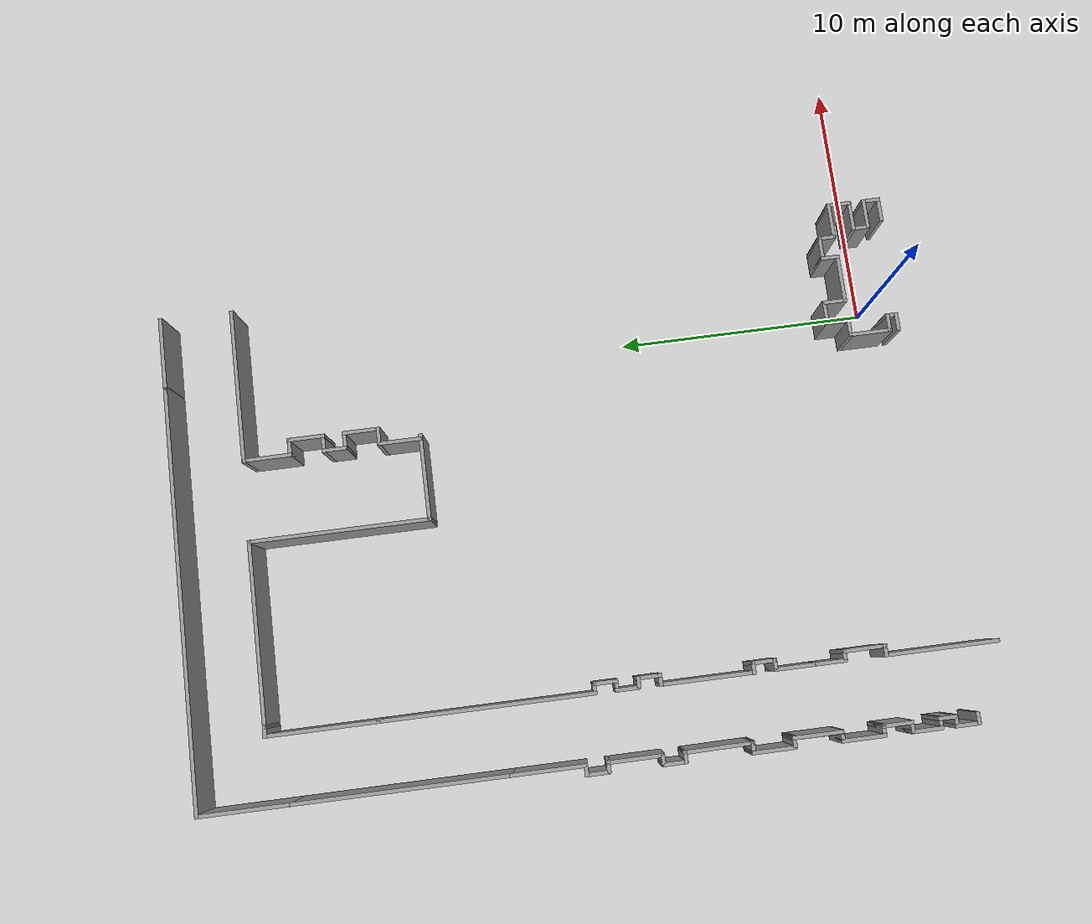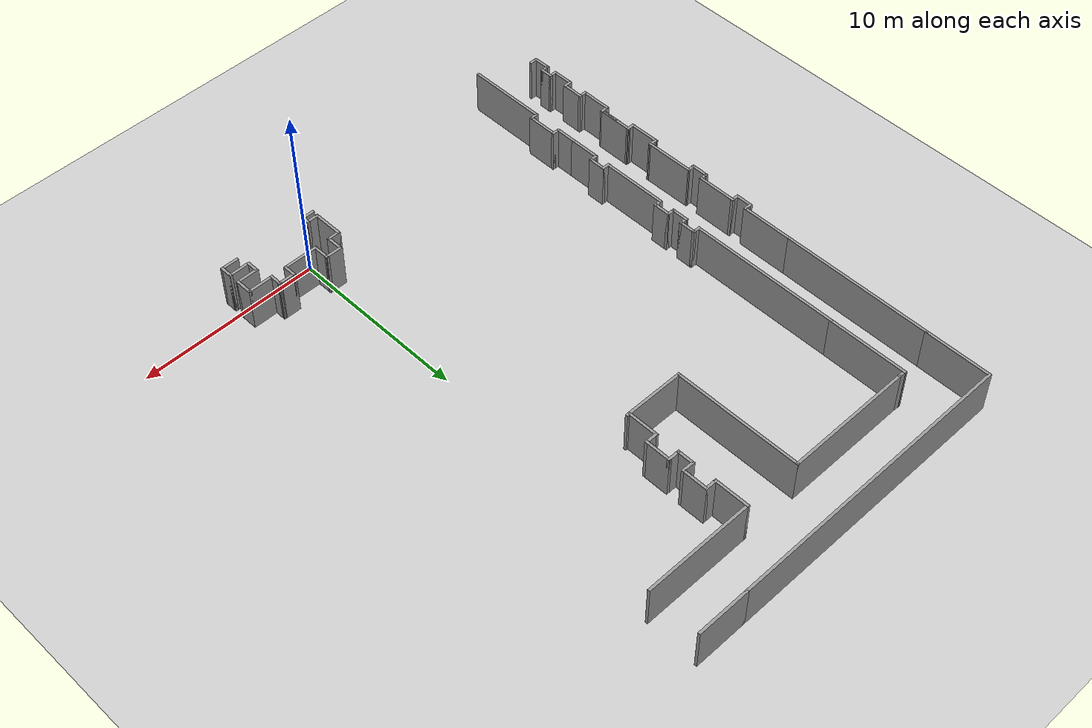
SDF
<sdf version="1.6">
 <world name="default">
  <model name="ground_plane">
   <static>1</static>
   <link name="link">
    <collision name="collision">
     <geometry><plane><normal>0 0 1</normal><size>1 1</size></plane></geometry>
     <surface><friction><ode><mu>100</mu><mu2>50</mu2></ode></friction></surface>
    </collision>
    <visual name="visual">
     <cast_shadows>0</cast_shadows>
     <geometry><plane><normal>0 0 1</normal><size>1 1</size></plane></geometry>
     <material>
      <script><uri>file://media/materials/scripts/gazebo.material</uri><name>Gazebo/Grey</name></script>
     </material>
    </visual>
   </link>
  </model>
  <model name="HRI_1">
   <pose>-5.72111 9.59502 0 0 -0 0</pose>
   <link name="Wall_0">
    <collision name="Wall_0_Collision">
     <geometry><box><size>0.75 0.15 2.5</size></box></geometry>
     <pose>0 0 1.25 0 -0 0</pose>
    </collision>
    <visual name="Wall_0_Visual">
     <pose>0 0 1.25 0 -0 0</pose>
     <geometry><box><size>0.75 0.15 2.5</size></box></geometry>
     <material>
      <script><uri>file://media/materials/scripts/gazebo.material</uri><name>Gazebo/Grey</name></script>
      <ambient>1 1 1 1</ambient>
     </material>
     <meta><layer>0</layer></meta>
    </visual>
    <pose>4.79204 -8.57985 0 0 -0 3.14159</pose>
   </link>
   <link name="Wall_1">
    <collision name="Wall_1_Collision">
     <geometry><box><size>1.75 0.15 2.5</size></box></geometry>
     <pose>0 0 1.25 0 -0 0</pose>
    </collision>
    <visual name="Wall_1_Visual">
     <pose>0 0 1.25 0 -0 0</pose>
     <geometry><box><size>1.75 0.15 2.5</size></box></geometry>
     <material>
      <script><uri>file://media/materials/scripts/gazebo.material</uri><name>Gazebo/Grey</name></script>
      <ambient>1 1 1 1</ambient>
     </material>
     <meta><layer>0</layer></meta>
    </visual>
    <pose>4.49204 -9.37985 0 0 -0 -1.5708</pose>
   </link>
   <link name="Wall_101">
    <collision name="Wall_101_Collision">
     <geometry><box><size>0.5 0.15 2.5</size></box></geometry>
     <pose>0 0 1.25 0 -0 0</pose>
    </collision>
    <visual name="Wall_101_Visual">
     <pose>0 0 1.25 0 -0 0</pose>
     <geometry><box><size>0.5 0.15 2.5</size></box></geometry>
     <material>
      <script><uri>file://media/materials/scripts/gazebo.material</uri><name>Gazebo/Grey</name></script>
      <ambient>1 1 1 1</ambient>
     </material>
     <meta><layer>0</layer></meta>
    </visual>
    <pose>-11.0021 -10.9128 0 0 -0 3.14159</pose>
   </link>
   <link name="Wall_102">
    <collision name="Wall_102_Collision">
     <geometry><box><size>1 0.15 2.5</size></box></geometry>
     <pose>0 0 1.25 0 -0 0</pose>
    </collision>
    <visual name="Wall_102_Visual">
     <pose>0 0 1.25 0 -0 0</pose>
     <geometry><box><size>1 0.15 2.5</size></box></geometry>
     <material>
      <script><uri>file://media/materials/scripts/gazebo.material</uri><name>Gazebo/Grey</name></script>
      <ambient>1 1 1 1</ambient>
     </material>
     <meta><layer>0</layer></meta>
    </visual>
    <pose>-11.1771 -10.4878 0 0 -0 1.5708</pose>
   </link>
   <link name="Wall_103">
    <collision name="Wall_103_Collision">
     <geometry><box><size>0.5 0.15 2.5</size></box></geometry>
     <pose>0 0 1.25 0 -0 0</pose>
    </collision>
    <visual name="Wall_103_Visual">
     <pose>0 0 1.25 0 -0 0</pose>
     <geometry><box><size>0.5 0.15 2.5</size></box></geometry>
     <material>
      <script><uri>file://media/materials/scripts/gazebo.material</uri><name>Gazebo/Grey</name></script>
      <ambient>1 1 1 1</ambient>
     </material>
     <meta><layer>0</layer></meta>
    </visual>
    <pose>-11.0021 -10.0628 0 0 -0 0</pose>
   </link>
   <link name="Wall_108">
    <collision name="Wall_108_Collision">
     <geometry><box><size>0.5 0.15 2.5</size></box></geometry>
     <pose>0 0 1.25 0 -0 0</pose>
    </collision>
    <visual name="Wall_108_Visual">
     <pose>0 0 1.25 0 -0 0</pose>
     <geometry><box><size>0.5 0.15 2.5</size></box></geometry>
     <material>
      <script><uri>file://media/materials/scripts/gazebo.material</uri><name>Gazebo/Grey</name></script>
      <ambient>1 1 1 1</ambient>
     </material>
     <meta><layer>0</layer></meta>
    </visual>
    <pose>-11.0021 -8.36282 0 0 -0 0</pose>
   </link>
   <link name="Wall_110">
    <collision name="Wall_110_Collision">
     <geometry><box><size>1.25 0.15 2.5</size></box></geometry>
     <pose>0 0 1.25 0 -0 0</pose>
    </collision>
    <visual name="Wall_110_Visual">
     <pose>0 0 1.25 0 -0 0</pose>
     <geometry><box><size>1.25 0.15 2.5</size></box></geometry>
     <material>
      <script><uri>file://media/materials/scripts/gazebo.material</uri><name>Gazebo/Grey</name></script>
      <ambient>1 1 1 1</ambient>
     </material>
     <meta><layer>0</layer></meta>
    </visual>
    <pose>-10.8271 -7.81282 0 0 -0 1.5708</pose>
   </link>
   <link name="Wall_111">
    <collision name="Wall_111_Collision">
     <geometry><box><size>0.5 0.15 2.5</size></box></geometry>
     <pose>0 0 1.25 0 -0 0</pose>
    </collision>
    <visual name="Wall_111_Visual">
     <pose>0 0 1.25 0 -0 0</pose>
     <geometry><box><size>0.5 0.15 2.5</size></box></geometry>
     <material>
      <script><uri>file://media/materials/scripts/gazebo.material</uri><name>Gazebo/Grey</name></script>
      <ambient>1 1 1 1</ambient>
     </material>
     <meta><layer>0</layer></meta>
    </visual>
    <pose>-11.0021 -7.26282 0 0 -0 3.14159</pose>
   </link>
   <link name="Wall_112">
    <collision name="Wall_112_Collision">
     <geometry><box><size>1.75 0.15 2.5</size></box></geometry>
     <pose>0 0 1.25 0 -0 0</pose>
    </collision>
    <visual name="Wall_112_Visual">
     <pose>0 0 1.25 0 -0 0</pose>
     <geometry><box><size>1.75 0.15 2.5</size></box></geometry>
     <material>
      <script><uri>file://media/materials/scripts/gazebo.material</uri><name>Gazebo/Grey</name></script>
      <ambient>1 1 1 1</ambient>
     </material>
     <meta><layer>0</layer></meta>
    </visual>
    <pose>-11.1771 -6.46282 0 0 -0 1.5708</pose>
   </link>
   <link name="Wall_113">
    <collision name="Wall_113_Collision">
     <geometry><box><size>0.495497 0.15 2.5</size></box></geometry>
     <pose>0 0 1.25 0 -0 0</pose>
    </collision>
    <visual name="Wall_113_Visual">
     <pose>0 0 1.25 0 -0 0</pose>
     <geometry><box><size>0.495497 0.15 2.5</size></box></geometry>
     <material>
      <script><uri>file://media/materials/scripts/gazebo.material</uri><name>Gazebo/Grey</name></script>
      <ambient>1 1 1 1</ambient>
     </material>
     <meta><layer>0</layer></meta>
    </visual>
    <pose>-11.0044 -5.66282 0 0 -0 0</pose>
   </link>
   <link name="Wall_117">
    <collision name="Wall_117_Collision">
     <geometry><box><size>2 0.15 2.5</size></box></geometry>
     <pose>0 0 1.25 0 -0 0</pose>
    </collision>
    <visual name="Wall_117_Visual">
     <pose>0 0 1.25 0 -0 0</pose>
     <geometry><box><size>2 0.15 2.5</size></box></geometry>
     <material>
      <script><uri>file://media/materials/scripts/gazebo.material</uri><name>Gazebo/Grey</name></script>
      <ambient>1 1 1 1</ambient>
     </material>
     <meta><layer>0</layer></meta>
    </visual>
    <pose>-10.8294 -4.73782 0 0 -0 1.56836</pose>
   </link>
   <link name="Wall_118">
    <collision name="Wall_118_Collision">
     <geometry><box><size>0.5 0.15 2.5</size></box></geometry>
     <pose>0 0 1.25 0 -0 0</pose>
    </collision>
    <visual name="Wall_118_Visual">
     <pose>0 0 1.25 0 -0 0</pose>
     <geometry><box><size>0.5 0.15 2.5</size></box></geometry>
     <material>
      <script><uri>file://media/materials/scripts/gazebo.material</uri><name>Gazebo/Grey</name></script>
      <ambient>1 1 1 1</ambient>
     </material>
     <meta><layer>0</layer></meta>
    </visual>
    <pose>-11.0021 -3.81282 0 0 -0 3.14159</pose>
   </link>
   <link name="Wall_119">
    <collision name="Wall_119_Collision">
     <geometry><box><size>1.75 0.15 2.5</size></box></geometry>
     <pose>0 0 1.25 0 -0 0</pose>
    </collision>
    <visual name="Wall_119_Visual">
     <pose>0 0 1.25 0 -0 0</pose>
     <geometry><box><size>1.75 0.15 2.5</size></box></geometry>
     <material>
      <script><uri>file://media/materials/scripts/gazebo.material</uri><name>Gazebo/Grey</name></script>
      <ambient>1 1 1 1</ambient>
     </material>
     <meta><layer>0</layer></meta>
    </visual>
    <pose>-11.1771 -3.01282 0 0 -0 1.5708</pose>
   </link>
   <link name="Wall_120">
    <collision name="Wall_120_Collision">
     <geometry><box><size>0.517803 0.15 2.5</size></box></geometry>
     <pose>0 0 1.25 0 -0 0</pose>
    </collision>
    <visual name="Wall_120_Visual">
     <pose>0 0 1.25 0 -0 0</pose>
     <geometry><box><size>0.517803 0.15 2.5</size></box></geometry>
     <material>
      <script><uri>file://media/materials/scripts/gazebo.material</uri><name>Gazebo/Grey</name></script>
      <ambient>1 1 1 1</ambient>
     </material>
     <meta><layer>0</layer></meta>
    </visual>
    <pose>-10.9934 -2.22151 0 0 -0 -0.047302</pose>
   </link>
   <link name="Wall_123">
    <collision name="Wall_123_Collision">
     <geometry><box><size>0.5 0.15 2.5</size></box></geometry>
     <pose>0 0 1.25 0 -0 0</pose>
    </collision>
    <visual name="Wall_123_Visual">
     <pose>0 0 1.25 0 -0 0</pose>
     <geometry><box><size>0.5 0.15 2.5</size></box></geometry>
     <material>
      <script><uri>file://media/materials/scripts/gazebo.material</uri><name>Gazebo/Grey</name></script>
      <ambient>1 1 1 1</ambient>
     </material>
     <meta><layer>0</layer></meta>
    </visual>
    <pose>-11.0021 0.387183 0 0 -0 3.14159</pose>
   </link>
   <link name="Wall_124">
    <collision name="Wall_124_Collision">
     <geometry><box><size>1 0.15 2.5</size></box></geometry>
     <pose>0 0 1.25 0 -0 0</pose>
    </collision>
    <visual name="Wall_124_Visual">
     <pose>0 0 1.25 0 -0 0</pose>
     <geometry><box><size>1 0.15 2.5</size></box></geometry>
     <material>
      <script><uri>file://media/materials/scripts/gazebo.material</uri><name>Gazebo/Grey</name></script>
      <ambient>1 1 1 1</ambient>
     </material>
     <meta><layer>0</layer></meta>
    </visual>
    <pose>-11.1771 0.812183 0 0 -0 1.5708</pose>
   </link>
   <link name="Wall_125">
    <collision name="Wall_125_Collision">
     <geometry><box><size>0.5 0.15 2.5</size></box></geometry>
     <pose>0 0 1.25 0 -0 0</pose>
    </collision>
    <visual name="Wall_125_Visual">
     <pose>0 0 1.25 0 -0 0</pose>
     <geometry><box><size>0.5 0.15 2.5</size></box></geometry>
     <material>
      <script><uri>file://media/materials/scripts/gazebo.material</uri><name>Gazebo/Grey</name></script>
      <ambient>1 1 1 1</ambient>
     </material>
     <meta><layer>0</layer></meta>
    </visual>
    <pose>-11.0021 1.23718 0 0 -0 0</pose>
   </link>
   <link name="Wall_126">
    <collision name="Wall_126_Collision">
     <geometry><box><size>2.25 0.15 2.5</size></box></geometry>
     <pose>0 0 1.25 0 -0 0</pose>
    </collision>
    <visual name="Wall_126_Visual">
     <pose>0 0 1.25 0 -0 0</pose>
     <geometry><box><size>2.25 0.15 2.5</size></box></geometry>
     <material>
      <script><uri>file://media/materials/scripts/gazebo.material</uri><name>Gazebo/Grey</name></script>
      <ambient>1 1 1 1</ambient>
     </material>
     <meta><layer>0</layer></meta>
    </visual>
    <pose>-10.8271 2.28718 0 0 -0 1.5708</pose>
   </link>
   <link name="Wall_127">
    <collision name="Wall_127_Collision">
     <geometry><box><size>0.5 0.15 2.5</size></box></geometry>
     <pose>0 0 1.25 0 -0 0</pose>
    </collision>
    <visual name="Wall_127_Visual">
     <pose>0 0 1.25 0 -0 0</pose>
     <geometry><box><size>0.5 0.15 2.5</size></box></geometry>
     <material>
      <script><uri>file://media/materials/scripts/gazebo.material</uri><name>Gazebo/Grey</name></script>
      <ambient>1 1 1 1</ambient>
     </material>
     <meta><layer>0</layer></meta>
    </visual>
    <pose>-11.0021 3.33718 0 0 -0 3.14159</pose>
   </link>
   <link name="Wall_129">
    <collision name="Wall_129_Collision">
     <geometry><box><size>1 0.15 2.5</size></box></geometry>
     <pose>0 0 1.25 0 -0 0</pose>
    </collision>
    <visual name="Wall_129_Visual">
     <pose>0 0 1.25 0 -0 0</pose>
     <geometry><box><size>1 0.15 2.5</size></box></geometry>
     <material>
      <script><uri>file://media/materials/scripts/gazebo.material</uri><name>Gazebo/Grey</name></script>
      <ambient>1 1 1 1</ambient>
     </material>
     <meta><layer>0</layer></meta>
    </visual>
    <pose>-11.1771 3.76218 0 0 -0 1.5708</pose>
   </link>
   <link name="Wall_130">
    <collision name="Wall_130_Collision">
     <geometry><box><size>0.5 0.15 2.5</size></box></geometry>
     <pose>0 0 1.25 0 -0 0</pose>
    </collision>
    <visual name="Wall_130_Visual">
     <pose>0 0 1.25 0 -0 0</pose>
     <geometry><box><size>0.5 0.15 2.5</size></box></geometry>
     <material>
      <script><uri>file://media/materials/scripts/gazebo.material</uri><name>Gazebo/Grey</name></script>
      <ambient>1 1 1 1</ambient>
     </material>
     <meta><layer>0</layer></meta>
    </visual>
    <pose>-11.0021 4.18718 0 0 -0 0</pose>
   </link>
   <link name="Wall_131">
    <collision name="Wall_131_Collision">
     <geometry><box><size>3 0.15 2.5</size></box></geometry>
     <pose>0 0 1.25 0 -0 0</pose>
    </collision>
    <visual name="Wall_131_Visual">
     <pose>0 0 1.25 0 -0 0</pose>
     <geometry><box><size>3 0.15 2.5</size></box></geometry>
     <material>
      <script><uri>file://media/materials/scripts/gazebo.material</uri><name>Gazebo/Grey</name></script>
      <ambient>1 1 1 1</ambient>
     </material>
     <meta><layer>0</layer></meta>
    </visual>
    <pose>-10.8271 5.61218 0 0 -0 1.5708</pose>
   </link>
   <link name="Wall_14">
    <collision name="Wall_14_Collision">
     <geometry><box><size>1 0.15 2.5</size></box></geometry>
     <pose>0 0 1.25 0 -0 0</pose>
    </collision>
    <visual name="Wall_14_Visual">
     <pose>0 0 1.25 0 -0 0</pose>
     <geometry><box><size>1 0.15 2.5</size></box></geometry>
     <material>
      <script><uri>file://media/materials/scripts/gazebo.material</uri><name>Gazebo/Grey</name></script>
      <ambient>1 1 1 1</ambient>
     </material>
     <meta><layer>0</layer></meta>
    </visual>
    <pose>5.09204 -8.15485 0 0 -0 1.5708</pose>
   </link>
   <link name="Wall_141">
    <collision name="Wall_141_Collision">
     <geometry><box><size>0.75 0.15 2.5</size></box></geometry>
     <pose>0 0 1.25 0 -0 0</pose>
    </collision>
    <visual name="Wall_141_Visual">
     <pose>0 0 1.25 0 -0 0</pose>
     <geometry><box><size>0.75 0.15 2.5</size></box></geometry>
     <material>
      <script><uri>file://media/materials/scripts/gazebo.material</uri><name>Gazebo/Grey</name></script>
      <ambient>1 1 1 1</ambient>
     </material>
     <meta><layer>0</layer></meta>
    </visual>
    <pose>-10.8271 -9.76282 0 0 -0 1.5708</pose>
   </link>
   <link name="Wall_142">
    <collision name="Wall_142_Collision">
     <geometry><box><size>0.5 0.15 2.5</size></box></geometry>
     <pose>0 0 1.25 0 -0 0</pose>
    </collision>
    <visual name="Wall_142_Visual">
     <pose>0 0 1.25 0 -0 0</pose>
     <geometry><box><size>0.5 0.15 2.5</size></box></geometry>
     <material>
      <script><uri>file://media/materials/scripts/gazebo.material</uri><name>Gazebo/Grey</name></script>
      <ambient>1 1 1 1</ambient>
     </material>
     <meta><layer>0</layer></meta>
    </visual>
    <pose>-11.0021 -9.46282 0 0 -0 3.14159</pose>
   </link>
   <link name="Wall_143">
    <collision name="Wall_143_Collision">
     <geometry><box><size>1.25 0.15 2.5</size></box></geometry>
     <pose>0 0 1.25 0 -0 0</pose>
    </collision>
    <visual name="Wall_143_Visual">
     <pose>0 0 1.25 0 -0 0</pose>
     <geometry><box><size>1.25 0.15 2.5</size></box></geometry>
     <material>
      <script><uri>file://media/materials/scripts/gazebo.material</uri><name>Gazebo/Grey</name></script>
      <ambient>1 1 1 1</ambient>
     </material>
     <meta><layer>0</layer></meta>
    </visual>
    <pose>-11.1771 -8.91282 0 0 -0 1.5708</pose>
   </link>
   <link name="Wall_146">
    <collision name="Wall_146_Collision">
     <geometry><box><size>4.5 0.15 2.5</size></box></geometry>
     <pose>0 0 1.25 0 -0 0</pose>
    </collision>
    <visual name="Wall_146_Visual">
     <pose>0 0 1.25 0 -0 0</pose>
     <geometry><box><size>4.5 0.15 2.5</size></box></geometry>
     <material>
      <script><uri>file://media/materials/scripts/gazebo.material</uri><name>Gazebo/Grey</name></script>
      <ambient>1 1 1 1</ambient>
     </material>
     <meta><layer>0</layer></meta>
    </visual>
    <pose>-8.20796 -10.0089 0 0 -0 1.5708</pose>
   </link>
   <link name="Wall_147">
    <collision name="Wall_147_Collision">
     <geometry><box><size>0.5 0.15 2.5</size></box></geometry>
     <pose>0 0 1.25 0 -0 0</pose>
    </collision>
    <visual name="Wall_147_Visual">
     <pose>0 0 1.25 0 -0 0</pose>
     <geometry><box><size>0.5 0.15 2.5</size></box></geometry>
     <material>
      <script><uri>file://media/materials/scripts/gazebo.material</uri><name>Gazebo/Grey</name></script>
      <ambient>1 1 1 1</ambient>
     </material>
     <meta><layer>0</layer></meta>
    </visual>
    <pose>-8.03296 -7.83385 0 0 -0 0</pose>
   </link>
   <link name="Wall_148">
    <collision name="Wall_148_Collision">
     <geometry><box><size>1.75 0.15 2.5</size></box></geometry>
     <pose>0 0 1.25 0 -0 0</pose>
    </collision>
    <visual name="Wall_148_Visual">
     <pose>0 0 1.25 0 -0 0</pose>
     <geometry><box><size>1.75 0.15 2.5</size></box></geometry>
     <material>
      <script><uri>file://media/materials/scripts/gazebo.material</uri><name>Gazebo/Grey</name></script>
      <ambient>1 1 1 1</ambient>
     </material>
     <meta><layer>0</layer></meta>
    </visual>
    <pose>-7.85796 -7.03385 0 0 -0 1.5708</pose>
   </link>
   <link name="Wall_149">
    <collision name="Wall_149_Collision">
     <geometry><box><size>0.5 0.15 2.5</size></box></geometry>
     <pose>0 0 1.25 0 -0 0</pose>
    </collision>
    <visual name="Wall_149_Visual">
     <pose>0 0 1.25 0 -0 0</pose>
     <geometry><box><size>0.5 0.15 2.5</size></box></geometry>
     <material>
      <script><uri>file://media/materials/scripts/gazebo.material</uri><name>Gazebo/Grey</name></script>
      <ambient>1 1 1 1</ambient>
     </material>
     <meta><layer>0</layer></meta>
    </visual>
    <pose>-8.03296 -6.23385 0 0 -0 3.14159</pose>
   </link>
   <link name="Wall_15">
    <collision name="Wall_15_Collision">
     <geometry><box><size>1 0.15 2.5</size></box></geometry>
     <pose>0 0 1.25 0 -0 0</pose>
    </collision>
    <visual name="Wall_15_Visual">
     <pose>0 0 1.25 0 -0 0</pose>
     <geometry><box><size>1 0.15 2.5</size></box></geometry>
     <material>
      <script><uri>file://media/materials/scripts/gazebo.material</uri><name>Gazebo/Grey</name></script>
      <ambient>1 1 1 1</ambient>
     </material>
     <meta><layer>0</layer></meta>
    </visual>
    <pose>5.51704 -7.72985 0 0 -0 0</pose>
   </link>
   <link name="Wall_150">
    <collision name="Wall_150_Collision">
     <geometry><box><size>1.25 0.15 2.5</size></box></geometry>
     <pose>0 0 1.25 0 -0 0</pose>
    </collision>
    <visual name="Wall_150_Visual">
     <pose>0 0 1.25 0 -0 0</pose>
     <geometry><box><size>1.25 0.15 2.5</size></box></geometry>
     <material>
      <script><uri>file://media/materials/scripts/gazebo.material</uri><name>Gazebo/Grey</name></script>
      <ambient>1 1 1 1</ambient>
     </material>
     <meta><layer>0</layer></meta>
    </visual>
    <pose>-8.20796 -5.68385 0 0 -0 1.5708</pose>
   </link>
   <link name="Wall_152">
    <collision name="Wall_152_Collision">
     <geometry><box><size>1.75 0.15 2.5</size></box></geometry>
     <pose>0 0 1.25 0 -0 0</pose>
    </collision>
    <visual name="Wall_152_Visual">
     <pose>0 0 1.25 0 -0 0</pose>
     <geometry><box><size>1.75 0.15 2.5</size></box></geometry>
     <material>
      <script><uri>file://media/materials/scripts/gazebo.material</uri><name>Gazebo/Grey</name></script>
      <ambient>1 1 1 1</ambient>
     </material>
     <meta><layer>0</layer></meta>
    </visual>
    <pose>-8.20796 -4.33385 0 0 -0 1.5708</pose>
   </link>
   <link name="Wall_16">
    <collision name="Wall_16_Collision">
     <geometry><box><size>1 0.15 2.5</size></box></geometry>
     <pose>0 0 1.25 0 -0 0</pose>
    </collision>
    <visual name="Wall_16_Visual">
     <pose>0 0 1.25 0 -0 0</pose>
     <geometry><box><size>1 0.15 2.5</size></box></geometry>
     <material>
      <script><uri>file://media/materials/scripts/gazebo.material</uri><name>Gazebo/Grey</name></script>
      <ambient>1 1 1 1</ambient>
     </material>
     <meta><layer>0</layer></meta>
    </visual>
    <pose>5.94204 -8.15485 0 0 -0 -1.5708</pose>
   </link>
   <link name="Wall_169">
    <collision name="Wall_169_Collision">
     <geometry><box><size>8.5 0.15 2.5</size></box></geometry>
     <pose>0 0 1.25 0 -0 0</pose>
    </collision>
    <visual name="Wall_169_Visual">
     <pose>0 0 1.25 0 -0 0</pose>
     <geometry><box><size>8.5 0.15 2.5</size></box></geometry>
     <material>
      <script><uri>file://media/materials/scripts/gazebo.material</uri><name>Gazebo/Grey</name></script>
      <ambient>1 1 1 1</ambient>
     </material>
     <meta><layer>0</layer></meta>
    </visual>
    <pose>-10.8271 11.2122 0 0 -0 1.5708</pose>
   </link>
   <link name="Wall_17">
    <collision name="Wall_17_Collision">
     <geometry><box><size>2 0.15 2.5</size></box></geometry>
     <pose>0 0 1.25 0 -0 0</pose>
    </collision>
    <visual name="Wall_17_Visual">
     <pose>0 0 1.25 0 -0 0</pose>
     <geometry><box><size>2 0.15 2.5</size></box></geometry>
     <material>
      <script><uri>file://media/materials/scripts/gazebo.material</uri><name>Gazebo/Grey</name></script>
      <ambient>1 1 1 1</ambient>
     </material>
     <meta><layer>0</layer></meta>
    </visual>
    <pose>6.86704 -8.57985 0 0 -0 0</pose>
   </link>
   <link name="Wall_171">
    <collision name="Wall_171_Collision">
     <geometry><box><size>3.75 0.15 2.5</size></box></geometry>
     <pose>0 0 1.25 0 -0 0</pose>
    </collision>
    <visual name="Wall_171_Visual">
     <pose>0 0 1.25 0 -0 0</pose>
     <geometry><box><size>3.75 0.15 2.5</size></box></geometry>
     <material>
      <script><uri>file://media/materials/scripts/gazebo.material</uri><name>Gazebo/Grey</name></script>
      <ambient>1 1 1 1</ambient>
     </material>
     <meta><layer>0</layer></meta>
    </visual>
    <pose>-10.8271 17.1872 0 0 -0 1.5708</pose>
   </link>
   <link name="Wall_173">
    <collision name="Wall_173_Collision">
     <geometry><box><size>16.75 0.15 2.5</size></box></geometry>
     <pose>0 0 1.25 0 -0 0</pose>
    </collision>
    <visual name="Wall_173_Visual">
     <pose>0 0 1.25 0 -0 0</pose>
     <geometry><box><size>16.75 0.15 2.5</size></box></geometry>
     <material>
      <script><uri>file://media/materials/scripts/gazebo.material</uri><name>Gazebo/Grey</name></script>
      <ambient>1 1 1 1</ambient>
     </material>
     <meta><layer>0</layer></meta>
    </visual>
    <pose>-2.52714 18.9872 0 0 -0 0</pose>
   </link>
   <link name="Wall_178">
    <collision name="Wall_178_Collision">
     <geometry><box><size>7.25 0.15 2.5</size></box></geometry>
     <pose>0 0 1.25 0 -0 0</pose>
    </collision>
    <visual name="Wall_178_Visual">
     <pose>0 0 1.25 0 -0 0</pose>
     <geometry><box><size>7.25 0.15 2.5</size></box></geometry>
     <material>
      <script><uri>file://media/materials/scripts/gazebo.material</uri><name>Gazebo/Grey</name></script>
      <ambient>1 1 1 1</ambient>
     </material>
     <meta><layer>0</layer></meta>
    </visual>
    <pose>-4.30796 16.1661 0 0 -0 0</pose>
   </link>
   <link name="Wall_18">
    <collision name="Wall_18_Collision">
     <geometry><box><size>0.75 0.15 2.5</size></box></geometry>
     <pose>0 0 1.25 0 -0 0</pose>
    </collision>
    <visual name="Wall_18_Visual">
     <pose>0 0 1.25 0 -0 0</pose>
     <geometry><box><size>0.75 0.15 2.5</size></box></geometry>
     <material>
      <script><uri>file://media/materials/scripts/gazebo.material</uri><name>Gazebo/Grey</name></script>
      <ambient>1 1 1 1</ambient>
     </material>
     <meta><layer>0</layer></meta>
    </visual>
    <pose>7.79204 -8.27985 0 0 -0 1.5708</pose>
   </link>
   <link name="Wall_180">
    <collision name="Wall_180_Collision">
     <geometry><box><size>7.25 0.15 2.5</size></box></geometry>
     <pose>0 0 1.25 0 -0 0</pose>
    </collision>
    <visual name="Wall_180_Visual">
     <pose>0 0 1.25 0 -0 0</pose>
     <geometry><box><size>7.25 0.15 2.5</size></box></geometry>
     <material>
      <script><uri>file://media/materials/scripts/gazebo.material</uri><name>Gazebo/Grey</name></script>
      <ambient>1 1 1 1</ambient>
     </material>
     <meta><layer>0</layer></meta>
    </visual>
    <pose>-0.757962 12.6161 0 0 -0 -1.5708</pose>
   </link>
   <link name="Wall_182">
    <collision name="Wall_182_Collision">
     <geometry><box><size>3.5 0.15 2.5</size></box></geometry>
     <pose>0 0 1.25 0 -0 0</pose>
    </collision>
    <visual name="Wall_182_Visual">
     <pose>0 0 1.25 0 -0 0</pose>
     <geometry><box><size>3.5 0.15 2.5</size></box></geometry>
     <material>
      <script><uri>file://media/materials/scripts/gazebo.material</uri><name>Gazebo/Grey</name></script>
      <ambient>1 1 1 1</ambient>
     </material>
     <meta><layer>0</layer></meta>
    </visual>
    <pose>0.917038 9.06615 0 0 -0 0</pose>
   </link>
   <link name="Wall_184">
    <collision name="Wall_184_Collision">
     <geometry><box><size>6.25 0.15 2.5</size></box></geometry>
     <pose>0 0 1.25 0 -0 0</pose>
    </collision>
    <visual name="Wall_184_Visual">
     <pose>0 0 1.25 0 -0 0</pose>
     <geometry><box><size>6.25 0.15 2.5</size></box></geometry>
     <material>
      <script><uri>file://media/materials/scripts/gazebo.material</uri><name>Gazebo/Grey</name></script>
      <ambient>1 1 1 1</ambient>
     </material>
     <meta><layer>0</layer></meta>
    </visual>
    <pose>5.5273 16.1174 0 0 -0 0</pose>
   </link>
   <link name="Wall_186">
    <collision name="Wall_186_Collision">
     <geometry><box><size>3 0.15 2.5</size></box></geometry>
     <pose>0 0 1.25 0 -0 0</pose>
    </collision>
    <visual name="Wall_186_Visual">
     <pose>0 0 1.25 0 -0 0</pose>
     <geometry><box><size>3 0.15 2.5</size></box></geometry>
     <material>
      <script><uri>file://media/materials/scripts/gazebo.material</uri><name>Gazebo/Grey</name></script>
      <ambient>1 1 1 1</ambient>
     </material>
     <meta><layer>0</layer></meta>
    </visual>
    <pose>7.19786 18.9872 0 0 -0 0</pose>
   </link>
   <link name="Wall_188">
    <collision name="Wall_188_Collision">
     <geometry><box><size>2 0.15 2.5</size></box></geometry>
     <pose>0 0 1.25 0 -0 0</pose>
    </collision>
    <visual name="Wall_188_Visual">
     <pose>0 0 1.25 0 -0 0</pose>
     <geometry><box><size>2 0.15 2.5</size></box></geometry>
     <material>
      <script><uri>file://media/materials/scripts/gazebo.material</uri><name>Gazebo/Grey</name></script>
      <ambient>1 1 1 1</ambient>
     </material>
     <meta><layer>0</layer></meta>
    </visual>
    <pose>2.4773 15.1924 0 0 -0 -1.5708</pose>
   </link>
   <link name="Wall_189">
    <collision name="Wall_189_Collision">
     <geometry><box><size>0.75 0.15 2.5</size></box></geometry>
     <pose>0 0 1.25 0 -0 0</pose>
    </collision>
    <visual name="Wall_189_Visual">
     <pose>0 0 1.25 0 -0 0</pose>
     <geometry><box><size>0.75 0.15 2.5</size></box></geometry>
     <material>
      <script><uri>file://media/materials/scripts/gazebo.material</uri><name>Gazebo/Grey</name></script>
      <ambient>1 1 1 1</ambient>
     </material>
     <meta><layer>0</layer></meta>
    </visual>
    <pose>2.7773 14.2674 0 0 -0 0</pose>
   </link>
   <link name="Wall_19">
    <collision name="Wall_19_Collision">
     <geometry><box><size>1 0.15 2.5</size></box></geometry>
     <pose>0 0 1.25 0 -0 0</pose>
    </collision>
    <visual name="Wall_19_Visual">
     <pose>0 0 1.25 0 -0 0</pose>
     <geometry><box><size>1 0.15 2.5</size></box></geometry>
     <material>
      <script><uri>file://media/materials/scripts/gazebo.material</uri><name>Gazebo/Grey</name></script>
      <ambient>1 1 1 1</ambient>
     </material>
     <meta><layer>0</layer></meta>
    </visual>
    <pose>8.21704 -7.97985 0 0 -0 0</pose>
   </link>
   <link name="Wall_190">
    <collision name="Wall_190_Collision">
     <geometry><box><size>1.5 0.15 2.5</size></box></geometry>
     <pose>0 0 1.25 0 -0 0</pose>
    </collision>
    <visual name="Wall_190_Visual">
     <pose>0 0 1.25 0 -0 0</pose>
     <geometry><box><size>1.5 0.15 2.5</size></box></geometry>
     <material>
      <script><uri>file://media/materials/scripts/gazebo.material</uri><name>Gazebo/Grey</name></script>
      <ambient>1 1 1 1</ambient>
     </material>
     <meta><layer>0</layer></meta>
    </visual>
    <pose>3.0773 13.5924 0 0 -0 -1.5708</pose>
   </link>
   <link name="Wall_191">
    <collision name="Wall_191_Collision">
     <geometry><box><size>0.75 0.15 2.5</size></box></geometry>
     <pose>0 0 1.25 0 -0 0</pose>
    </collision>
    <visual name="Wall_191_Visual">
     <pose>0 0 1.25 0 -0 0</pose>
     <geometry><box><size>0.75 0.15 2.5</size></box></geometry>
     <material>
      <script><uri>file://media/materials/scripts/gazebo.material</uri><name>Gazebo/Grey</name></script>
      <ambient>1 1 1 1</ambient>
     </material>
     <meta><layer>0</layer></meta>
    </visual>
    <pose>2.7773 12.9174 0 0 -0 3.14159</pose>
   </link>
   <link name="Wall_192">
    <collision name="Wall_192_Collision">
     <geometry><box><size>1 0.15 2.5</size></box></geometry>
     <pose>0 0 1.25 0 -0 0</pose>
    </collision>
    <visual name="Wall_192_Visual">
     <pose>0 0 1.25 0 -0 0</pose>
     <geometry><box><size>1 0.15 2.5</size></box></geometry>
     <material>
      <script><uri>file://media/materials/scripts/gazebo.material</uri><name>Gazebo/Grey</name></script>
      <ambient>1 1 1 1</ambient>
     </material>
     <meta><layer>0</layer></meta>
    </visual>
    <pose>2.4773 12.4924 0 0 -0 -1.5708</pose>
   </link>
   <link name="Wall_193">
    <collision name="Wall_193_Collision">
     <geometry><box><size>0.75 0.15 2.5</size></box></geometry>
     <pose>0 0 1.25 0 -0 0</pose>
    </collision>
    <visual name="Wall_193_Visual">
     <pose>0 0 1.25 0 -0 0</pose>
     <geometry><box><size>0.75 0.15 2.5</size></box></geometry>
     <material>
      <script><uri>file://media/materials/scripts/gazebo.material</uri><name>Gazebo/Grey</name></script>
      <ambient>1 1 1 1</ambient>
     </material>
     <meta><layer>0</layer></meta>
    </visual>
    <pose>2.7773 12.0674 0 0 -0 0</pose>
   </link>
   <link name="Wall_194">
    <collision name="Wall_194_Collision">
     <geometry><box><size>1.5 0.15 2.5</size></box></geometry>
     <pose>0 0 1.25 0 -0 0</pose>
    </collision>
    <visual name="Wall_194_Visual">
     <pose>0 0 1.25 0 -0 0</pose>
     <geometry><box><size>1.5 0.15 2.5</size></box></geometry>
     <material>
      <script><uri>file://media/materials/scripts/gazebo.material</uri><name>Gazebo/Grey</name></script>
      <ambient>1 1 1 1</ambient>
     </material>
     <meta><layer>0</layer></meta>
    </visual>
    <pose>3.0773 11.3924 0 0 -0 -1.5708</pose>
   </link>
   <link name="Wall_195">
    <collision name="Wall_195_Collision">
     <geometry><box><size>0.75 0.15 2.5</size></box></geometry>
     <pose>0 0 1.25 0 -0 0</pose>
    </collision>
    <visual name="Wall_195_Visual">
     <pose>0 0 1.25 0 -0 0</pose>
     <geometry><box><size>0.75 0.15 2.5</size></box></geometry>
     <material>
      <script><uri>file://media/materials/scripts/gazebo.material</uri><name>Gazebo/Grey</name></script>
      <ambient>1 1 1 1</ambient>
     </material>
     <meta><layer>0</layer></meta>
    </visual>
    <pose>2.7773 10.7174 0 0 -0 3.14159</pose>
   </link>
   <link name="Wall_196">
    <collision name="Wall_196_Collision">
     <geometry><box><size>1.75 0.15 2.5</size></box></geometry>
     <pose>0 0 1.25 0 -0 0</pose>
    </collision>
    <visual name="Wall_196_Visual">
     <pose>0 0 1.25 0 -0 0</pose>
     <geometry><box><size>1.75 0.15 2.5</size></box></geometry>
     <material>
      <script><uri>file://media/materials/scripts/gazebo.material</uri><name>Gazebo/Grey</name></script>
      <ambient>1 1 1 1</ambient>
     </material>
     <meta><layer>0</layer></meta>
    </visual>
    <pose>2.4773 9.91743 0 0 -0 -1.5708</pose>
   </link>
   <link name="Wall_2">
    <collision name="Wall_2_Collision">
     <geometry><box><size>0.75 0.15 2.5</size></box></geometry>
     <pose>0 0 1.25 0 -0 0</pose>
    </collision>
    <visual name="Wall_2_Visual">
     <pose>0 0 1.25 0 -0 0</pose>
     <geometry><box><size>0.75 0.15 2.5</size></box></geometry>
     <material>
      <script><uri>file://media/materials/scripts/gazebo.material</uri><name>Gazebo/Grey</name></script>
      <ambient>1 1 1 1</ambient>
     </material>
     <meta><layer>0</layer></meta>
    </visual>
    <pose>4.79204 -10.1799 0 0 -0 0</pose>
   </link>
   <link name="Wall_20">
    <collision name="Wall_20_Collision">
     <geometry><box><size>0.75 0.15 2.5</size></box></geometry>
     <pose>0 0 1.25 0 -0 0</pose>
    </collision>
    <visual name="Wall_20_Visual">
     <pose>0 0 1.25 0 -0 0</pose>
     <geometry><box><size>0.75 0.15 2.5</size></box></geometry>
     <material>
      <script><uri>file://media/materials/scripts/gazebo.material</uri><name>Gazebo/Grey</name></script>
      <ambient>1 1 1 1</ambient>
     </material>
     <meta><layer>0</layer></meta>
    </visual>
    <pose>8.64204 -8.27985 0 0 -0 -1.5708</pose>
   </link>
   <link name="Wall_203">
    <collision name="Wall_203_Collision">
     <geometry><box><size>1.60288 0.15 2.5</size></box></geometry>
     <pose>0 0 1.25 0 -0 0</pose>
    </collision>
    <visual name="Wall_203_Visual">
     <pose>0 0 1.25 0 -0 0</pose>
     <geometry><box><size>1.60288 0.15 2.5</size></box></geometry>
     <material>
      <script><uri>file://media/materials/scripts/gazebo.material</uri><name>Gazebo/Grey</name></script>
      <ambient>1 1 1 1</ambient>
     </material>
     <meta><layer>0</layer></meta>
    </visual>
    <pose>-10.8358 -4.93639 0 0 -0 -1.57702</pose>
   </link>
   <link name="Wall_205">
    <collision name="Wall_205_Collision">
     <geometry><box><size>2.76745 0.15 2.5</size></box></geometry>
     <pose>0 0 1.25 0 -0 0</pose>
    </collision>
    <visual name="Wall_205_Visual">
     <pose>0 0 1.25 0 -0 0</pose>
     <geometry><box><size>2.76745 0.15 2.5</size></box></geometry>
     <material>
      <script><uri>file://media/materials/scripts/gazebo.material</uri><name>Gazebo/Grey</name></script>
      <ambient>1 1 1 1</ambient>
     </material>
     <meta><layer>0</layer></meta>
    </visual>
    <pose>-10.8184 -0.921513 0 0 -0 -1.56415</pose>
   </link>
   <link name="Wall_21">
    <collision name="Wall_21_Collision">
     <geometry><box><size>1.5 0.15 2.5</size></box></geometry>
     <pose>0 0 1.25 0 -0 0</pose>
    </collision>
    <visual name="Wall_21_Visual">
     <pose>0 0 1.25 0 -0 0</pose>
     <geometry><box><size>1.5 0.15 2.5</size></box></geometry>
     <material>
      <script><uri>file://media/materials/scripts/gazebo.material</uri><name>Gazebo/Grey</name></script>
      <ambient>1 1 1 1</ambient>
     </material>
     <meta><layer>0</layer></meta>
    </visual>
    <pose>9.31704 -8.57985 0 0 -0 0</pose>
   </link>
   <link name="Wall_211">
    <collision name="Wall_211_Collision">
     <geometry><box><size>0.5 0.15 2.5</size></box></geometry>
     <pose>0 0 1.25 0 -0 0</pose>
    </collision>
    <visual name="Wall_211_Visual">
     <pose>0 0 1.25 0 -0 0</pose>
     <geometry><box><size>0.5 0.15 2.5</size></box></geometry>
     <material>
      <script><uri>file://media/materials/scripts/gazebo.material</uri><name>Gazebo/Grey</name></script>
      <ambient>1 1 1 1</ambient>
     </material>
     <meta><layer>0</layer></meta>
    </visual>
    <pose>-8.03296 -3.53385 0 0 -0 0</pose>
   </link>
   <link name="Wall_212">
    <collision name="Wall_212_Collision">
     <geometry><box><size>1 0.15 2.5</size></box></geometry>
     <pose>0 0 1.25 0 -0 0</pose>
    </collision>
    <visual name="Wall_212_Visual">
     <pose>0 0 1.25 0 -0 0</pose>
     <geometry><box><size>1 0.15 2.5</size></box></geometry>
     <material>
      <script><uri>file://media/materials/scripts/gazebo.material</uri><name>Gazebo/Grey</name></script>
      <ambient>1 1 1 1</ambient>
     </material>
     <meta><layer>0</layer></meta>
    </visual>
    <pose>-7.85796 -3.10885 0 0 -0 1.5708</pose>
   </link>
   <link name="Wall_213">
    <collision name="Wall_213_Collision">
     <geometry><box><size>0.51749 0.15 2.5</size></box></geometry>
     <pose>0 0 1.25 0 -0 0</pose>
    </collision>
    <visual name="Wall_213_Visual">
     <pose>0 0 1.25 0 -0 0</pose>
     <geometry><box><size>0.51749 0.15 2.5</size></box></geometry>
     <material>
      <script><uri>file://media/materials/scripts/gazebo.material</uri><name>Gazebo/Grey</name></script>
      <ambient>1 1 1 1</ambient>
     </material>
     <meta><layer>0</layer></meta>
    </visual>
    <pose>-8.04171 -2.68385 0 0 -0 3.14159</pose>
   </link>
   <link name="Wall_215">
    <collision name="Wall_215_Collision">
     <geometry><box><size>3.75 0.15 2.5</size></box></geometry>
     <pose>0 0 1.25 0 -0 0</pose>
    </collision>
    <visual name="Wall_215_Visual">
     <pose>0 0 1.25 0 -0 0</pose>
     <geometry><box><size>3.75 0.15 2.5</size></box></geometry>
     <material>
      <script><uri>file://media/materials/scripts/gazebo.material</uri><name>Gazebo/Grey</name></script>
      <ambient>1 1 1 1</ambient>
     </material>
     <meta><layer>0</layer></meta>
    </visual>
    <pose>-8.20796 -0.866363 0 0 -0 1.5708</pose>
   </link>
   <link name="Wall_217">
    <collision name="Wall_217_Collision">
     <geometry><box><size>0.5 0.15 2.5</size></box></geometry>
     <pose>0 0 1.25 0 -0 0</pose>
    </collision>
    <visual name="Wall_217_Visual">
     <pose>0 0 1.25 0 -0 0</pose>
     <geometry><box><size>0.5 0.15 2.5</size></box></geometry>
     <material>
      <script><uri>file://media/materials/scripts/gazebo.material</uri><name>Gazebo/Grey</name></script>
      <ambient>1 1 1 1</ambient>
     </material>
     <meta><layer>0</layer></meta>
    </visual>
    <pose>-8.03296 0.933637 0 0 -0 0</pose>
   </link>
   <link name="Wall_218">
    <collision name="Wall_218_Collision">
     <geometry><box><size>1 0.15 2.5</size></box></geometry>
     <pose>0 0 1.25 0 -0 0</pose>
    </collision>
    <visual name="Wall_218_Visual">
     <pose>0 0 1.25 0 -0 0</pose>
     <geometry><box><size>1 0.15 2.5</size></box></geometry>
     <material>
      <script><uri>file://media/materials/scripts/gazebo.material</uri><name>Gazebo/Grey</name></script>
      <ambient>1 1 1 1</ambient>
     </material>
     <meta><layer>0</layer></meta>
    </visual>
    <pose>-7.85796 1.35864 0 0 -0 1.5708</pose>
   </link>
   <link name="Wall_219">
    <collision name="Wall_219_Collision">
     <geometry><box><size>0.5 0.15 2.5</size></box></geometry>
     <pose>0 0 1.25 0 -0 0</pose>
    </collision>
    <visual name="Wall_219_Visual">
     <pose>0 0 1.25 0 -0 0</pose>
     <geometry><box><size>0.5 0.15 2.5</size></box></geometry>
     <material>
      <script><uri>file://media/materials/scripts/gazebo.material</uri><name>Gazebo/Grey</name></script>
      <ambient>1 1 1 1</ambient>
     </material>
     <meta><layer>0</layer></meta>
    </visual>
    <pose>-8.03296 1.78364 0 0 -0 3.14159</pose>
   </link>
   <link name="Wall_22">
    <collision name="Wall_22_Collision">
     <geometry><box><size>1 0.15 2.5</size></box></geometry>
     <pose>0 0 1.25 0 -0 0</pose>
    </collision>
    <visual name="Wall_22_Visual">
     <pose>0 0 1.25 0 -0 0</pose>
     <geometry><box><size>1 0.15 2.5</size></box></geometry>
     <material>
      <script><uri>file://media/materials/scripts/gazebo.material</uri><name>Gazebo/Grey</name></script>
      <ambient>1 1 1 1</ambient>
     </material>
     <meta><layer>0</layer></meta>
    </visual>
    <pose>9.99204 -9.00485 0 0 -0 -1.5708</pose>
   </link>
   <link name="Wall_220">
    <collision name="Wall_220_Collision">
     <geometry><box><size>1 0.15 2.5</size></box></geometry>
     <pose>0 0 1.25 0 -0 0</pose>
    </collision>
    <visual name="Wall_220_Visual">
     <pose>0 0 1.25 0 -0 0</pose>
     <geometry><box><size>1 0.15 2.5</size></box></geometry>
     <material>
      <script><uri>file://media/materials/scripts/gazebo.material</uri><name>Gazebo/Grey</name></script>
      <ambient>1 1 1 1</ambient>
     </material>
     <meta><layer>0</layer></meta>
    </visual>
    <pose>-8.20796 2.20864 0 0 -0 1.5708</pose>
   </link>
   <link name="Wall_221">
    <collision name="Wall_221_Collision">
     <geometry><box><size>0.5 0.15 2.5</size></box></geometry>
     <pose>0 0 1.25 0 -0 0</pose>
    </collision>
    <visual name="Wall_221_Visual">
     <pose>0 0 1.25 0 -0 0</pose>
     <geometry><box><size>0.5 0.15 2.5</size></box></geometry>
     <material>
      <script><uri>file://media/materials/scripts/gazebo.material</uri><name>Gazebo/Grey</name></script>
      <ambient>1 1 1 1</ambient>
     </material>
     <meta><layer>0</layer></meta>
    </visual>
    <pose>-8.03296 2.63364 0 0 -0 0</pose>
   </link>
   <link name="Wall_222">
    <collision name="Wall_222_Collision">
     <geometry><box><size>1 0.15 2.5</size></box></geometry>
     <pose>0 0 1.25 0 -0 0</pose>
    </collision>
    <visual name="Wall_222_Visual">
     <pose>0 0 1.25 0 -0 0</pose>
     <geometry><box><size>1 0.15 2.5</size></box></geometry>
     <material>
      <script><uri>file://media/materials/scripts/gazebo.material</uri><name>Gazebo/Grey</name></script>
      <ambient>1 1 1 1</ambient>
     </material>
     <meta><layer>0</layer></meta>
    </visual>
    <pose>-7.85796 3.05864 0 0 -0 1.5708</pose>
   </link>
   <link name="Wall_223">
    <collision name="Wall_223_Collision">
     <geometry><box><size>0.5 0.15 2.5</size></box></geometry>
     <pose>0 0 1.25 0 -0 0</pose>
    </collision>
    <visual name="Wall_223_Visual">
     <pose>0 0 1.25 0 -0 0</pose>
     <geometry><box><size>0.5 0.15 2.5</size></box></geometry>
     <material>
      <script><uri>file://media/materials/scripts/gazebo.material</uri><name>Gazebo/Grey</name></script>
      <ambient>1 1 1 1</ambient>
     </material>
     <meta><layer>0</layer></meta>
    </visual>
    <pose>-8.03296 3.48364 0 0 -0 3.14159</pose>
   </link>
   <link name="Wall_225">
    <collision name="Wall_225_Collision">
     <geometry><box><size>8.5 0.15 2.5</size></box></geometry>
     <pose>0 0 1.25 0 -0 0</pose>
    </collision>
    <visual name="Wall_225_Visual">
     <pose>0 0 1.25 0 -0 0</pose>
     <geometry><box><size>8.5 0.15 2.5</size></box></geometry>
     <material>
      <script><uri>file://media/materials/scripts/gazebo.material</uri><name>Gazebo/Grey</name></script>
      <ambient>1 1 1 1</ambient>
     </material>
     <meta><layer>0</layer></meta>
    </visual>
    <pose>-8.20796 7.65864 0 0 -0 1.5708</pose>
   </link>
   <link name="Wall_227">
    <collision name="Wall_227_Collision">
     <geometry><box><size>4.5 0.15 2.5</size></box></geometry>
     <pose>0 0 1.25 0 -0 0</pose>
    </collision>
    <visual name="Wall_227_Visual">
     <pose>0 0 1.25 0 -0 0</pose>
     <geometry><box><size>4.5 0.15 2.5</size></box></geometry>
     <material>
      <script><uri>file://media/materials/scripts/gazebo.material</uri><name>Gazebo/Grey</name></script>
      <ambient>1 1 1 1</ambient>
     </material>
     <meta><layer>0</layer></meta>
    </visual>
    <pose>-8.20796 14.0086 0 0 -0 1.5708</pose>
   </link>
   <link name="Wall_229">
    <collision name="Wall_229_Collision">
     <geometry><box><size>0.500437 0.15 2.5</size></box></geometry>
     <pose>0 0 1.25 0 -0 0</pose>
    </collision>
    <visual name="Wall_229_Visual">
     <pose>0 0 1.25 0 -0 0</pose>
     <geometry><box><size>0.500437 0.15 2.5</size></box></geometry>
     <material>
      <script><uri>file://media/materials/scripts/gazebo.material</uri><name>Gazebo/Grey</name></script>
      <ambient>1 1 1 1</ambient>
     </material>
     <meta><layer>0</layer></meta>
    </visual>
    <pose>-8.03296 16.1749 0 0 -0 3.09166</pose>
   </link>
   <link name="Wall_23">
    <collision name="Wall_23_Collision">
     <geometry><box><size>1.25 0.15 2.5</size></box></geometry>
     <pose>0 0 1.25 0 -0 0</pose>
    </collision>
    <visual name="Wall_23_Visual">
     <pose>0 0 1.25 0 -0 0</pose>
     <geometry><box><size>1.25 0.15 2.5</size></box></geometry>
     <material>
      <script><uri>file://media/materials/scripts/gazebo.material</uri><name>Gazebo/Grey</name></script>
      <ambient>1 1 1 1</ambient>
     </material>
     <meta><layer>0</layer></meta>
    </visual>
    <pose>9.44204 -9.42985 0 0 -0 3.14159</pose>
   </link>
   <link name="Wall_24">
    <collision name="Wall_24_Collision">
     <geometry><box><size>0.75 0.15 2.5</size></box></geometry>
     <pose>0 0 1.25 0 -0 0</pose>
    </collision>
    <visual name="Wall_24_Visual">
     <pose>0 0 1.25 0 -0 0</pose>
     <geometry><box><size>0.75 0.15 2.5</size></box></geometry>
     <material>
      <script><uri>file://media/materials/scripts/gazebo.material</uri><name>Gazebo/Grey</name></script>
      <ambient>1 1 1 1</ambient>
     </material>
     <meta><layer>0</layer></meta>
    </visual>
    <pose>8.89204 -9.72985 0 0 -0 -1.5708</pose>
   </link>
   <link name="Wall_25">
    <collision name="Wall_25_Collision">
     <geometry><box><size>1.25 0.15 2.5</size></box></geometry>
     <pose>0 0 1.25 0 -0 0</pose>
    </collision>
    <visual name="Wall_25_Visual">
     <pose>0 0 1.25 0 -0 0</pose>
     <geometry><box><size>1.25 0.15 2.5</size></box></geometry>
     <material>
      <script><uri>file://media/materials/scripts/gazebo.material</uri><name>Gazebo/Grey</name></script>
      <ambient>1 1 1 1</ambient>
     </material>
     <meta><layer>0</layer></meta>
    </visual>
    <pose>9.44204 -10.0299 0 0 -0 0</pose>
   </link>
   <link name="Wall_26">
    <collision name="Wall_26_Collision">
     <geometry><box><size>0.75 0.15 2.5</size></box></geometry>
     <pose>0 0 1.25 0 -0 0</pose>
    </collision>
    <visual name="Wall_26_Visual">
     <pose>0 0 1.25 0 -0 0</pose>
     <geometry><box><size>0.75 0.15 2.5</size></box></geometry>
     <material>
      <script><uri>file://media/materials/scripts/gazebo.material</uri><name>Gazebo/Grey</name></script>
      <ambient>1 1 1 1</ambient>
     </material>
     <meta><layer>0</layer></meta>
    </visual>
    <pose>9.99204 -10.3299 0 0 -0 -1.5708</pose>
   </link>
   <link name="Wall_27">
    <collision name="Wall_27_Collision">
     <geometry><box><size>1 0.15 2.5</size></box></geometry>
     <pose>0 0 1.25 0 -0 0</pose>
    </collision>
    <visual name="Wall_27_Visual">
     <pose>0 0 1.25 0 -0 0</pose>
     <geometry><box><size>1 0.15 2.5</size></box></geometry>
     <material>
      <script><uri>file://media/materials/scripts/gazebo.material</uri><name>Gazebo/Grey</name></script>
      <ambient>1 1 1 1</ambient>
     </material>
     <meta><layer>0</layer></meta>
    </visual>
    <pose>9.56704 -10.6299 0 0 -0 3.14159</pose>
   </link>
   <link name="Wall_3">
    <collision name="Wall_3_Collision">
     <geometry><box><size>0.5 0.15 2.5</size></box></geometry>
     <pose>0 0 1.25 0 -0 0</pose>
    </collision>
    <visual name="Wall_3_Visual">
     <pose>0 0 1.25 0 -0 0</pose>
     <geometry><box><size>0.5 0.15 2.5</size></box></geometry>
     <material>
      <script><uri>file://media/materials/scripts/gazebo.material</uri><name>Gazebo/Grey</name></script>
      <ambient>1 1 1 1</ambient>
     </material>
     <meta><layer>0</layer></meta>
    </visual>
    <pose>5.09204 -10.3549 0 0 -0 -1.5708</pose>
   </link>
   <link name="Wall_4">
    <collision name="Wall_4_Collision">
     <geometry><box><size>0.75 0.15 2.5</size></box></geometry>
     <pose>0 0 1.25 0 -0 0</pose>
    </collision>
    <visual name="Wall_4_Visual">
     <pose>0 0 1.25 0 -0 0</pose>
     <geometry><box><size>0.75 0.15 2.5</size></box></geometry>
     <material>
      <script><uri>file://media/materials/scripts/gazebo.material</uri><name>Gazebo/Grey</name></script>
      <ambient>1 1 1 1</ambient>
     </material>
     <meta><layer>0</layer></meta>
    </visual>
    <pose>4.79204 -10.5299 0 0 -0 3.14159</pose>
   </link>
   <static>1</static>
  </model>
 </world>
</sdf>
